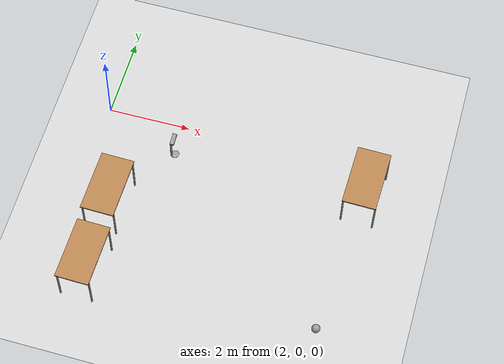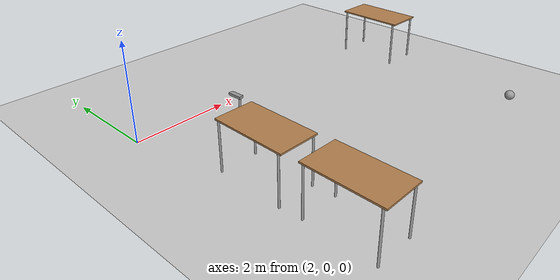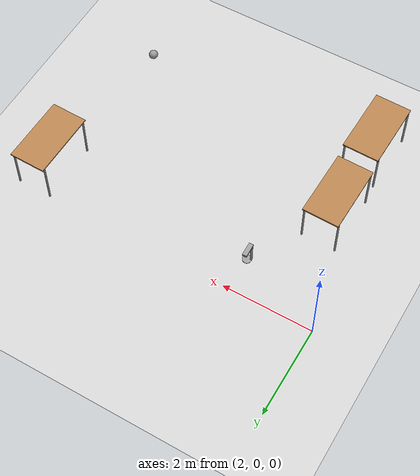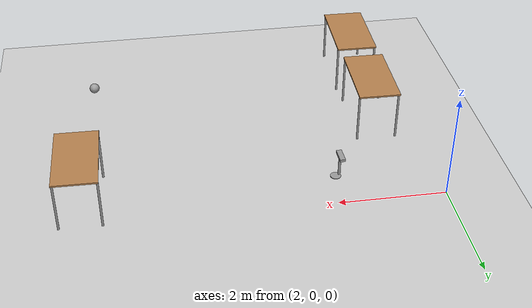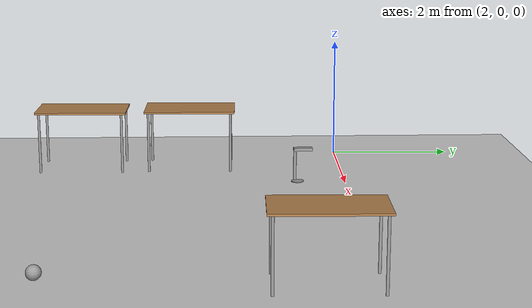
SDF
<sdf version="1.6">
 <world name="default">
  <model name="ground_plane">
   <static>1</static>
   <link name="link">
    <collision name="collision">
     <geometry><plane><normal>0 0 1</normal><size>100 100</size></plane></geometry>
     <surface>
      <contact><collide_bitmask>65535</collide_bitmask></contact>
      <friction><ode><mu>100</mu><mu2>50</mu2></ode></friction>
     </surface>
    </collision>
    <visual name="visual">
     <cast_shadows>0</cast_shadows>
     <geometry><plane><normal>0 0 1</normal><size>100 100</size></plane></geometry>
     <material>
      <script><uri>file://media/materials/scripts/gazebo.material</uri><name>Gazebo/Grey</name></script>
     </material>
    </visual>
   </link>
  </model>
  <model name="table_clone_0">
   <static>1</static>
   <link name="link">
    <collision name="surface">
     <pose>0 0 1 0 -0 0</pose>
     <geometry><box><size>1.5 0.8 0.03</size></box></geometry>
     <surface><friction><ode><mu>0.6</mu><mu2>0.6</mu2></ode></friction></surface>
    </collision>
    <visual name="visual1">
     <pose>0 0 1 0 -0 0</pose>
     <geometry><box><size>1.5 0.8 0.03</size></box></geometry>
     <material>
      <script><uri>file://media/materials/scripts/gazebo.material</uri><name>Gazebo/Wood</name></script>
     </material>
    </visual>
    <collision name="front_left_leg">
     <pose>0.68 0.38 0.5 0 -0 0</pose>
     <geometry><cylinder><radius>0.02</radius><length>1</length></cylinder></geometry>
    </collision>
    <visual name="front_left_leg">
     <pose>0.68 0.38 0.5 0 -0 0</pose>
     <geometry><cylinder><radius>0.02</radius><length>1</length></cylinder></geometry>
     <material>
      <script><uri>file://media/materials/scripts/gazebo.material</uri><name>Gazebo/Grey</name></script>
     </material>
    </visual>
    <collision name="front_right_leg">
     <pose>0.68 -0.38 0.5 0 -0 0</pose>
     <geometry><cylinder><radius>0.02</radius><length>1</length></cylinder></geometry>
    </collision>
    <visual name="front_right_leg">
     <pose>0.68 -0.38 0.5 0 -0 0</pose>
     <geometry><cylinder><radius>0.02</radius><length>1</length></cylinder></geometry>
     <material>
      <script><uri>file://media/materials/scripts/gazebo.material</uri><name>Gazebo/Grey</name></script>
     </material>
    </visual>
    <collision name="back_right_leg">
     <pose>-0.68 -0.38 0.5 0 -0 0</pose>
     <geometry><cylinder><radius>0.02</radius><length>1</length></cylinder></geometry>
    </collision>
    <visual name="back_right_leg">
     <pose>-0.68 -0.38 0.5 0 -0 0</pose>
     <geometry><cylinder><radius>0.02</radius><length>1</length></cylinder></geometry>
     <material>
      <script><uri>file://media/materials/scripts/gazebo.material</uri><name>Gazebo/Grey</name></script>
     </material>
    </visual>
    <collision name="back_left_leg">
     <pose>-0.68 0.38 0.5 0 -0 0</pose>
     <geometry><cylinder><radius>0.02</radius><length>1</length></cylinder></geometry>
    </collision>
    <visual name="back_left_leg">
     <pose>-0.68 0.38 0.5 0 -0 0</pose>
     <geometry><cylinder><radius>0.02</radius><length>1</length></cylinder></geometry>
     <material>
      <script><uri>file://media/materials/scripts/gazebo.material</uri><name>Gazebo/Grey</name></script>
     </material>
    </visual>
   </link>
   <pose>2.83656 -4.32604 0 0 -0 1.55156</pose>
  </model>
  <model name="table_clone_1">
   <static>1</static>
   <link name="link">
    <collision name="surface">
     <pose>0 0 1 0 -0 0</pose>
     <geometry><box><size>1.5 0.8 0.03</size></box></geometry>
     <surface><friction><ode><mu>0.6</mu><mu2>0.6</mu2></ode></friction></surface>
    </collision>
    <visual name="visual1">
     <pose>0 0 1 0 -0 0</pose>
     <geometry><box><size>1.5 0.8 0.03</size></box></geometry>
     <material>
      <script><uri>file://media/materials/scripts/gazebo.material</uri><name>Gazebo/Wood</name></script>
     </material>
    </visual>
    <collision name="front_left_leg">
     <pose>0.68 0.38 0.5 0 -0 0</pose>
     <geometry><cylinder><radius>0.02</radius><length>1</length></cylinder></geometry>
    </collision>
    <visual name="front_left_leg">
     <pose>0.68 0.38 0.5 0 -0 0</pose>
     <geometry><cylinder><radius>0.02</radius><length>1</length></cylinder></geometry>
     <material>
      <script><uri>file://media/materials/scripts/gazebo.material</uri><name>Gazebo/Grey</name></script>
     </material>
    </visual>
    <collision name="front_right_leg">
     <pose>0.68 -0.38 0.5 0 -0 0</pose>
     <geometry><cylinder><radius>0.02</radius><length>1</length></cylinder></geometry>
    </collision>
    <visual name="front_right_leg">
     <pose>0.68 -0.38 0.5 0 -0 0</pose>
     <geometry><cylinder><radius>0.02</radius><length>1</length></cylinder></geometry>
     <material>
      <script><uri>file://media/materials/scripts/gazebo.material</uri><name>Gazebo/Grey</name></script>
     </material>
    </visual>
    <collision name="back_right_leg">
     <pose>-0.68 -0.38 0.5 0 -0 0</pose>
     <geometry><cylinder><radius>0.02</radius><length>1</length></cylinder></geometry>
    </collision>
    <visual name="back_right_leg">
     <pose>-0.68 -0.38 0.5 0 -0 0</pose>
     <geometry><cylinder><radius>0.02</radius><length>1</length></cylinder></geometry>
     <material>
      <script><uri>file://media/materials/scripts/gazebo.material</uri><name>Gazebo/Grey</name></script>
     </material>
    </visual>
    <collision name="back_left_leg">
     <pose>-0.68 0.38 0.5 0 -0 0</pose>
     <geometry><cylinder><radius>0.02</radius><length>1</length></cylinder></geometry>
    </collision>
    <visual name="back_left_leg">
     <pose>-0.68 0.38 0.5 0 -0 0</pose>
     <geometry><cylinder><radius>0.02</radius><length>1</length></cylinder></geometry>
     <material>
      <script><uri>file://media/materials/scripts/gazebo.material</uri><name>Gazebo/Grey</name></script>
     </material>
    </visual>
   </link>
   <pose>2.82278 -2.52413 0 0 -0 1.55156</pose>
  </model>
  <model name="table_clone_2">
   <static>1</static>
   <link name="link">
    <collision name="surface">
     <pose>0 0 1 0 -0 0</pose>
     <geometry><box><size>1.5 0.8 0.03</size></box></geometry>
     <surface><friction><ode><mu>0.6</mu><mu2>0.6</mu2></ode></friction></surface>
    </collision>
    <visual name="visual1">
     <pose>0 0 1 0 -0 0</pose>
     <geometry><box><size>1.5 0.8 0.03</size></box></geometry>
     <material>
      <script><uri>file://media/materials/scripts/gazebo.material</uri><name>Gazebo/Wood</name></script>
     </material>
    </visual>
    <collision name="front_left_leg">
     <pose>0.68 0.38 0.5 0 -0 0</pose>
     <geometry><cylinder><radius>0.02</radius><length>1</length></cylinder></geometry>
    </collision>
    <visual name="front_left_leg">
     <pose>0.68 0.38 0.5 0 -0 0</pose>
     <geometry><cylinder><radius>0.02</radius><length>1</length></cylinder></geometry>
     <material>
      <script><uri>file://media/materials/scripts/gazebo.material</uri><name>Gazebo/Grey</name></script>
     </material>
    </visual>
    <collision name="front_right_leg">
     <pose>0.68 -0.38 0.5 0 -0 0</pose>
     <geometry><cylinder><radius>0.02</radius><length>1</length></cylinder></geometry>
    </collision>
    <visual name="front_right_leg">
     <pose>0.68 -0.38 0.5 0 -0 0</pose>
     <geometry><cylinder><radius>0.02</radius><length>1</length></cylinder></geometry>
     <material>
      <script><uri>file://media/materials/scripts/gazebo.material</uri><name>Gazebo/Grey</name></script>
     </material>
    </visual>
    <collision name="back_right_leg">
     <pose>-0.68 -0.38 0.5 0 -0 0</pose>
     <geometry><cylinder><radius>0.02</radius><length>1</length></cylinder></geometry>
    </collision>
    <visual name="back_right_leg">
     <pose>-0.68 -0.38 0.5 0 -0 0</pose>
     <geometry><cylinder><radius>0.02</radius><length>1</length></cylinder></geometry>
     <material>
      <script><uri>file://media/materials/scripts/gazebo.material</uri><name>Gazebo/Grey</name></script>
     </material>
    </visual>
    <collision name="back_left_leg">
     <pose>-0.68 0.38 0.5 0 -0 0</pose>
     <geometry><cylinder><radius>0.02</radius><length>1</length></cylinder></geometry>
    </collision>
    <visual name="back_left_leg">
     <pose>-0.68 0.38 0.5 0 -0 0</pose>
     <geometry><cylinder><radius>0.02</radius><length>1</length></cylinder></geometry>
     <material>
      <script><uri>file://media/materials/scripts/gazebo.material</uri><name>Gazebo/Grey</name></script>
     </material>
    </visual>
   </link>
   <pose>8.54421 -0.72383 0 0 -0 1.55156</pose>
  </model>
  <model name="HumanoidRobot">
   <link name="link_0">
    <pose>0.041667 -0.016667 -0.254167 0 -0 0</pose>
    <inertial>
     <mass>1</mass>
     <inertia><ixx>0.145833</ixx><ixy>0</ixy><ixz>0</ixz><iyy>0.145833</iyy><iyz>0</iyz><izz>0.125</izz></inertia>
    </inertial>
    <visual name="visual">
     <geometry><cylinder><radius>0.1</radius><length>0.0125</length></cylinder></geometry>
     <material>
      <lighting>1</lighting>
      <script><uri>file://media/materials/scripts/gazebo.material</uri><name>Gazebo/Grey</name></script>
      <shader type="pixel"><normal_map>__default__</normal_map></shader>
      <ambient>0.3 0.3 0.3 1</ambient>
      <diffuse>0.7 0.7 0.7 1</diffuse>
      <specular>0.01 0.01 0.01 1</specular>
      <emissive>0 0 0 1</emissive>
     </material>
    </visual>
    <collision name="collision">
     <geometry><cylinder><radius>0.1</radius><length>0.0125</length></cylinder></geometry>
     <surface>
      <friction>
       <ode><mu>1</mu><mu2>1</mu2><fdir1>0 0 0</fdir1><slip1>0</slip1><slip2>0</slip2></ode>
       <torsional>
        <coefficient>1</coefficient>
        <patch_radius>0</patch_radius>
        <surface_radius>0</surface_radius>
        <use_patch_radius>1</use_patch_radius>
        <ode><slip>0</slip></ode>
       </torsional>
      </friction>
      <bounce><restitution_coefficient>0</restitution_coefficient><threshold>1e+06</threshold></bounce>
      <contact>
       <collide_without_contact>0</collide_without_contact>
       <collide_without_contact_bitmask>1</collide_without_contact_bitmask>
       <collide_bitmask>1</collide_bitmask>
       <ode>
        <soft_cfm>0</soft_cfm>
        <soft_erp>0.2</soft_erp>
        <kp>1e+13</kp>
        <kd>1</kd>
        <max_vel>0.01</max_vel>
        <min_depth>0</min_depth>
       </ode>
       <bullet>
        <split_impulse>1</split_impulse>
        <split_impulse_penetration_threshold>-0.01</split_impulse_penetration_threshold>
        <soft_cfm>0</soft_cfm>
        <soft_erp>0.2</soft_erp>
        <kp>1e+13</kp>
        <kd>1</kd>
       </bullet>
      </contact>
     </surface>
    </collision>
   </link>
   <link name="link_1">
    <pose>-0.033333 -0.054167 -0.010417 0 -0 0</pose>
    <inertial>
     <mass>1</mass>
     <inertia><ixx>0.145833</ixx><ixy>0</ixy><ixz>0</ixz><iyy>0.145833</iyy><iyz>0</iyz><izz>0.125</izz></inertia>
    </inertial>
    <visual name="visual">
     <geometry><cylinder><radius>0.025</radius><length>0.5</length></cylinder></geometry>
     <material>
      <lighting>1</lighting>
      <script><uri>file://media/materials/scripts/gazebo.material</uri><name>Gazebo/Grey</name></script>
      <shader type="pixel"><normal_map>__default__</normal_map></shader>
      <ambient>0.3 0.3 0.3 1</ambient>
      <diffuse>0.7 0.7 0.7 1</diffuse>
      <specular>0.01 0.01 0.01 1</specular>
      <emissive>0 0 0 1</emissive>
     </material>
    </visual>
    <collision name="collision">
     <geometry><cylinder><radius>0.025</radius><length>0.5</length></cylinder></geometry>
     <surface>
      <friction>
       <ode><mu>1</mu><mu2>1</mu2><fdir1>0 0 0</fdir1><slip1>0</slip1><slip2>0</slip2></ode>
       <torsional>
        <coefficient>1</coefficient>
        <patch_radius>0</patch_radius>
        <surface_radius>0</surface_radius>
        <use_patch_radius>1</use_patch_radius>
        <ode><slip>0</slip></ode>
       </torsional>
      </friction>
      <bounce><restitution_coefficient>0</restitution_coefficient><threshold>1e+06</threshold></bounce>
      <contact>
       <collide_without_contact>0</collide_without_contact>
       <collide_without_contact_bitmask>1</collide_without_contact_bitmask>
       <collide_bitmask>1</collide_bitmask>
       <ode>
        <soft_cfm>0</soft_cfm>
        <soft_erp>0.2</soft_erp>
        <kp>1e+13</kp>
        <kd>1</kd>
        <max_vel>0.01</max_vel>
        <min_depth>0</min_depth>
       </ode>
       <bullet>
        <split_impulse>1</split_impulse>
        <split_impulse_penetration_threshold>-0.01</split_impulse_penetration_threshold>
        <soft_cfm>0</soft_cfm>
        <soft_erp>0.2</soft_erp>
        <kp>1e+13</kp>
        <kd>1</kd>
       </bullet>
      </contact>
     </surface>
    </collision>
   </link>
   <link name="link_2">
    <pose>-0.008333 0.070833 0.264583 0 -0 0</pose>
    <inertial>
     <mass>1</mass>
     <inertia>
      <ixx>0.166667</ixx>
      <ixy>0</ixy>
      <ixz>0</ixz>
      <iyy>0.166667</iyy>
      <iyz>0</iyz>
      <izz>0.166667</izz>
     </inertia>
    </inertial>
    <visual name="visual">
     <geometry><box><size>0.1 0.3 0.05</size></box></geometry>
     <material>
      <lighting>1</lighting>
      <script><uri>file://media/materials/scripts/gazebo.material</uri><name>Gazebo/Grey</name></script>
      <shader type="pixel"><normal_map>__default__</normal_map></shader>
      <ambient>0.3 0.3 0.3 1</ambient>
      <diffuse>0.7 0.7 0.7 1</diffuse>
      <specular>0.01 0.01 0.01 1</specular>
      <emissive>0 0 0 1</emissive>
     </material>
    </visual>
    <collision name="collision">
     <geometry><box><size>0.1 0.3 0.05</size></box></geometry>
     <surface>
      <friction>
       <ode><mu>1</mu><mu2>1</mu2><fdir1>0 0 0</fdir1><slip1>0</slip1><slip2>0</slip2></ode>
       <torsional>
        <coefficient>1</coefficient>
        <patch_radius>0</patch_radius>
        <surface_radius>0</surface_radius>
        <use_patch_radius>1</use_patch_radius>
        <ode><slip>0</slip></ode>
       </torsional>
      </friction>
      <bounce><restitution_coefficient>0</restitution_coefficient><threshold>1e+06</threshold></bounce>
      <contact>
       <collide_without_contact>0</collide_without_contact>
       <collide_without_contact_bitmask>1</collide_without_contact_bitmask>
       <collide_bitmask>1</collide_bitmask>
       <ode>
        <soft_cfm>0</soft_cfm>
        <soft_erp>0.2</soft_erp>
        <kp>1e+13</kp>
        <kd>1</kd>
        <max_vel>0.01</max_vel>
        <min_depth>0</min_depth>
       </ode>
       <bullet>
        <split_impulse>1</split_impulse>
        <split_impulse_penetration_threshold>-0.01</split_impulse_penetration_threshold>
        <soft_cfm>0</soft_cfm>
        <soft_erp>0.2</soft_erp>
        <kp>1e+13</kp>
        <kd>1</kd>
       </bullet>
      </contact>
     </surface>
    </collision>
   </link>
   <joint name="link_0_JOINT_0" type="fixed">
    <parent>link_0</parent>
    <child>link_1</child>
    <physics>
     <ode><limit><cfm>0</cfm><erp>0.2</erp></limit><suspension><cfm>0</cfm><erp>0.2</erp></suspension></ode>
    </physics>
   </joint>
   <joint name="link_1_JOINT_2" type="revolute">
    <parent>link_1</parent>
    <child>link_2</child>
    <axis>
     <xyz>1 0 0</xyz>
     <use_parent_model_frame>0</use_parent_model_frame>
     <limit>
      <lower>-1.79769e+308</lower>
      <upper>1.79769e+308</upper>
      <effort>-1</effort>
      <velocity>-1</velocity>
     </limit>
     <dynamics>
      <spring_reference>0</spring_reference>
      <spring_stiffness>0</spring_stiffness>
      <damping>0</damping>
     </dynamics>
    </axis>
    <physics>
     <ode><limit><cfm>0</cfm><erp>0.2</erp></limit><suspension><cfm>0</cfm><erp>0.2</erp></suspension></ode>
    </physics>
   </joint>
   <static>0</static>
   <pose>3.84361 -0.755238 0.260411 1e-06 -1e-06 0.031828</pose>
  </model>
  <model name="my_ball">
   <link name="link_0">
    <inertial>
     <mass>1</mass>
     <inertia><ixx>0.1</ixx><ixy>0</ixy><ixz>0</ixz><iyy>0.1</iyy><iyz>0</iyz><izz>0.1</izz></inertia>
    </inertial>
    <visual name="visual">
     <geometry><sphere><radius>0.1</radius></sphere></geometry>
     <material>
      <lighting>1</lighting>
      <script><uri>file://media/materials/scripts/gazebo.material</uri><name>Gazebo/Grey</name></script>
      <shader type="pixel"><normal_map>__default__</normal_map></shader>
      <ambient>1 1 1 1</ambient>
      <diffuse>1 1 1 1</diffuse>
      <specular>1 1 1 1</specular>
      <emissive>1 1 1 1</emissive>
     </material>
    </visual>
    <collision name="collision">
     <geometry><sphere><radius>0.1</radius></sphere></geometry>
     <surface>
      <friction>
       <ode><mu>1</mu><mu2>1</mu2><fdir1>0 0 0</fdir1><slip1>0</slip1><slip2>0</slip2></ode>
       <torsional>
        <coefficient>1</coefficient>
        <patch_radius>0</patch_radius>
        <surface_radius>0</surface_radius>
        <use_patch_radius>1</use_patch_radius>
        <ode><slip>0</slip></ode>
       </torsional>
      </friction>
      <bounce><restitution_coefficient>0</restitution_coefficient><threshold>1e+06</threshold></bounce>
      <contact>
       <collide_without_contact>0</collide_without_contact>
       <collide_without_contact_bitmask>1</collide_without_contact_bitmask>
       <collide_bitmask>1</collide_bitmask>
       <ode>
        <soft_cfm>0</soft_cfm>
        <soft_erp>0.2</soft_erp>
        <kp>1e+13</kp>
        <kd>1</kd>
        <max_vel>0.01</max_vel>
        <min_depth>0</min_depth>
       </ode>
       <bullet>
        <split_impulse>1</split_impulse>
        <split_impulse_penetration_threshold>-0.01</split_impulse_penetration_threshold>
        <soft_cfm>0</soft_cfm>
        <soft_erp>0.2</soft_erp>
        <kp>1e+13</kp>
        <kd>1</kd>
       </bullet>
      </contact>
     </surface>
    </collision>
   </link>
   <static>0</static>
   <pose>8.28452 -4.31251 0.1 0 -0 0</pose>
  </model>
 </world>
</sdf>
